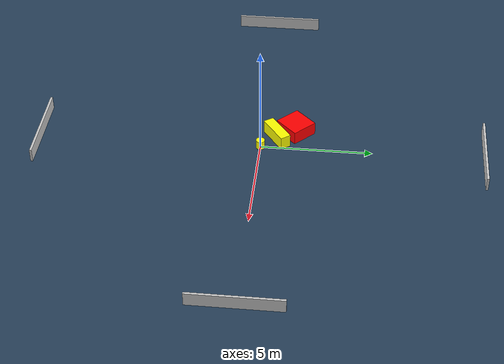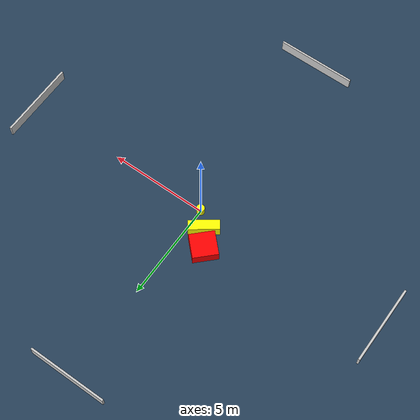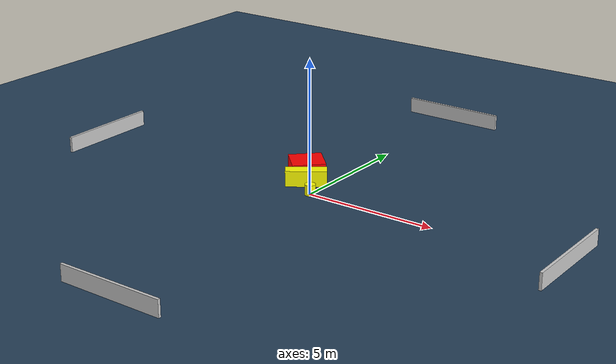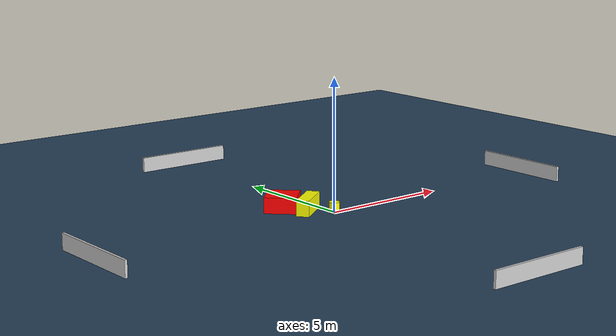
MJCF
<?xml version="1.0" ?>
<mujoco model="generated_environment">
  <option timestep="0.01" integrator="RK4" cone="elliptic"/>
  <default>
    <geom density="1"/>
  </default>
  <asset>
    <texture builtin="gradient" height="3072" name="skybox" rgb1="0.3 0.5 0.7" rgb2="0 0 0" type="skybox" width="512"/>
    <texture builtin="checker" height="300" name="groundplane" rgb1="0.2 0.3 0.4" rgb2="0.1 0.2 0.3" type="2d" width="300"/>
    <material name="groundplane" reflectance="0.2" texrepeat="5 5" texture="groundplane"/>
  </asset>
  <worldbody>
    <light dir="0 0 -1" directional="true" pos="0 0 1.5"/>
    <geom condim="3" friction="0.5 0.005 0.001" material="groundplane" name="floor" pos="0 0 0" size="0 0 0.05" type="plane"/>
    <body name="walls">
      <geom name="wall_1" condim="4" pos="-10.0 0.0 0.3" rgba="0.800000011920929 0.800000011920929 0.800000011920929 1.0" size="0.05 2.0 0.3" type="box"/>
      <geom name="wall_2" condim="4" pos="10.0 0.0 0.3" rgba="0.800000011920929 0.800000011920929 0.800000011920929 1.0" size="0.05 2.0 0.3" type="box"/>
      <geom name="wall_3" condim="4" pos="0.0 -10.0 0.3" rgba="0.800000011920929 0.800000011920929 0.800000011920929 1.0" size="2.0 0.05 0.3" type="box"/>
      <geom name="wall_4" condim="4" pos="0.0 10.0 0.3" rgba="0.800000011920929 0.800000011920929 0.800000011920929 1.0" size="2.0 0.05 0.3" type="box"/>
    </body>
    <body name="robot">
      <joint name="joint_x" type="slide" pos="0 0 0" axis="1 0 0"/>
      <joint name="joint_y" type="slide" pos="0 0 0" axis="0 1 0"/>
      <geom name="robot" type="cylinder" pos="0.0 0.0 0.2" size="0.2 0.2 0.0" mass="5.0" friction="1.0 0.005 0.0001" condim="4" rgba="1.0 1.0 0.0 1.0"/>
    </body>
    <body name="obstacle_1_movable">
      <geom name="obstacle_1_movable" condim="4" pos="-0.6846822327575292 0.6858506442047491 0.3" euler="0 0 215.88573501718443" friction="0.0 0.005 0.001" rgba="1.0 1.0 0.0 1.0" size="0.7597384769538007 0.2434871649638448 0.3" type="box" mass="0.1"/>
      <joint type="free"/>
    </body>
    <body name="obstacle_2_static">
      <geom name="obstacle_2_static" condim="4" pos="-1.2497177336730425 1.5036283434040338 0.3" euler="0 0 314.9416828253159" friction="0.0 0.005 0.001" rgba="1.0 0.0 0.0 1.0" size="0.6059670166766234 0.6256566239495767 0.3" type="box"/>
    </body>
  </worldbody>
  <actuator>
    <motor name="actuator_x" joint="joint_x" gear="1" ctrlrange="-1 1"/>
    <motor name="actuator_y" joint="joint_y" gear="1" ctrlrange="-1 1"/>
  </actuator>
</mujoco>
